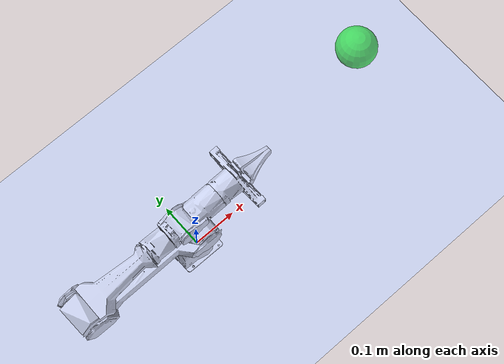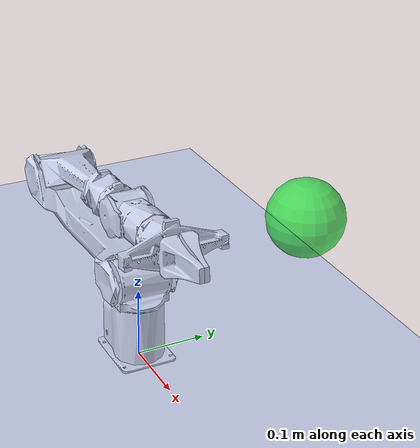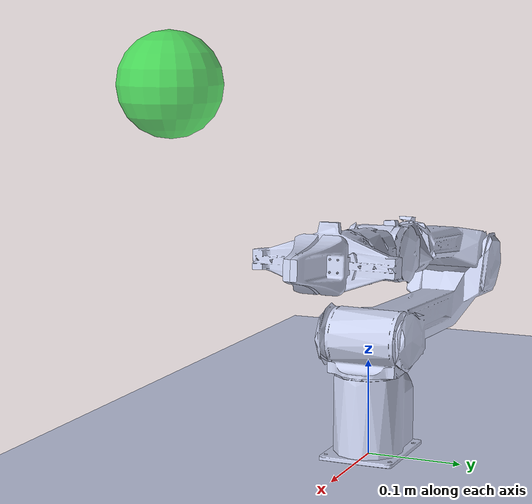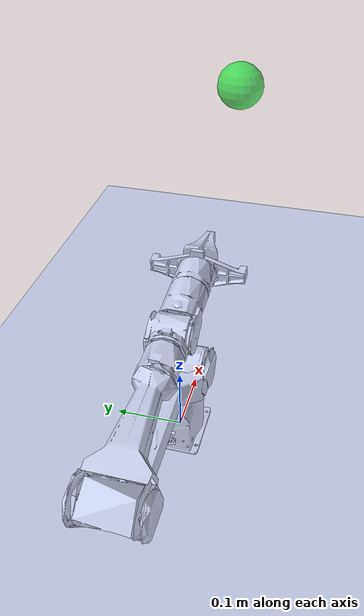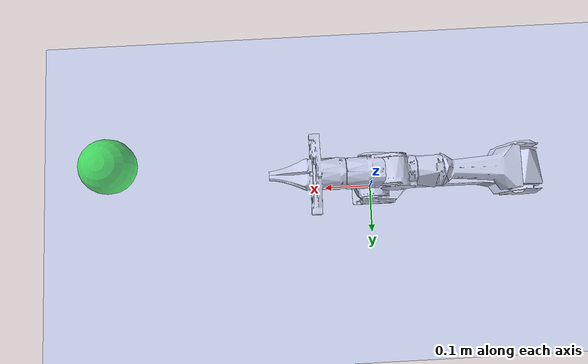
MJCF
<mujoco model="piper">
  <compiler angle="radian" meshdir="../meshes/" eulerseq="XYZ" />

  <option gravity="0 0 -9.81" timestep="0.002" />

  <default>
    <joint damping="10" armature="0.1" />
    <geom rgba="0.79 0.82 0.93 1" />
    <position kp="200" kv="20" />
  </default>

  <asset>
    <mesh name="base_link" file="base_link.STL" />
    <mesh name="link1" file="link1.STL" />
    <mesh name="link2" file="link2.STL" />
    <mesh name="link3" file="link3.STL" />
    <mesh name="link4" file="link4.STL" />
    <mesh name="link5" file="link5.STL" />
    <mesh name="link6" file="link6.STL" />
    <mesh name="gripper_base" file="gripper_base.STL" />
    <mesh name="link7" file="link7.STL" />
    <mesh name="link8" file="link8.STL" />
    <texture type="2d" name="groundplane" builtin="checker" rgb1="0.35 0.35 0.35" rgb2="0.25 0.25 0.25" width="512" height="512" />
    <material name="groundplane" texture="groundplane" texrepeat="5 5" />
  </asset>

  <worldbody>
    <light pos="0 0 3" dir="0 0 -1" diffuse="0.8 0.8 0.8" specular="0.3 0.3 0.3" directional="true" />
    <light pos="1 1 2" dir="-0.5 -0.5 -1" diffuse="0.4 0.4 0.4" specular="0.1 0.1 0.1" />
    <geom type="plane" size="2 2 0.01" material="groundplane" />

    <!-- IK target — drag this green ball with Ctrl + Right-click -->
    <body name="ik_target" mocap="true" pos="0.4 0 0.4">
      <geom type="sphere" size="0.04" rgba="0.1 0.9 0.2 0.7" contype="0" conaffinity="0" />
    </body>

    <body name="base_link" pos="0 0 0" gravcomp="1">
      <inertial pos="-0.00474 0.0000257 0.04145" mass="1.02"
                diaginertia="0.00267 0.00283 0.000896" />
      <geom type="mesh" mesh="base_link" />

      <body name="link1" pos="0 0 0.123" gravcomp="1">
        <inertial pos="0.000122 0.000105 -0.00439" mass="0.71"
                  diaginertia="0.000489 0.000405 0.00044" />
        <joint name="joint1" type="hinge" axis="0 0 1" range="-2.618 2.168" />
        <geom type="mesh" mesh="link1" />

        <!-- URDF rpy="1.5708 -0.1359 -3.1416" using eulerseq=XYZ (extrinsic, matches URDF) -->
        <body name="link2" euler="1.5708 -0.1359 -3.1416" gravcomp="1">
          <inertial pos="0.1987 -0.01093 0.00142" mass="1.17"
                    diaginertia="0.0679 0.0677 0.00117" />
          <joint name="joint2" type="hinge" axis="0 0 1" range="0 3.14" />
          <geom type="mesh" mesh="link2" />

          <body name="link3" pos="0.28503 0 0" euler="0 0 -1.7939" gravcomp="1">
            <inertial pos="-0.02027 -0.13391 -0.000459" mass="0.5"
                      diaginertia="0.01362 0.01380 0.00045" />
            <joint name="joint3" type="hinge" axis="0 0 1" range="-2.967 0" />
            <geom type="mesh" mesh="link3" />

            <body name="link4" pos="-0.021984 -0.25075 0" euler="1.5708 0 0" gravcomp="1">
              <inertial pos="-0.0000967 0.000876 -0.00497" mass="0.38"
                        diaginertia="0.000190 0.000185 0.000155" />
              <joint name="joint4" type="hinge" axis="0 0 1" range="-1.745 1.745" />
              <geom type="mesh" mesh="link4" />

              <body name="link5" euler="-1.5708 0 0" gravcomp="1">
                <inertial pos="-0.0000411 -0.05665 -0.00372" mass="0.383"
                          diaginertia="0.00166 0.00164 0.000185" />
                <joint name="joint5" type="hinge" axis="0 0 1" range="-1.22 1.22" />
                <geom type="mesh" mesh="link5" />

                <body name="link6" pos="0.000088259 -0.091 0" euler="1.5708 0 0" gravcomp="1">
                  <inertial pos="-0.0000883 0.00000906 -0.002" mass="0.007"
                            diaginertia="0.00000107 0.000000573 0.000000573" />
                  <joint name="joint6" type="hinge" axis="0 0 1" range="-2.0944 2.0944" />
                  <geom type="mesh" mesh="link6" rgba="0.90 0.92 0.93 1" />

                  <body name="gripper_base" gravcomp="1">
                    <inertial pos="-0.000184 0.0000805 0.03214" mass="0.45"
                              diaginertia="0.000929 0.000714 0.000394" />
                    <geom type="mesh" mesh="gripper_base" />
                    <!-- End-effector site at fingertip midpoint -->
                    <site name="ee_site" pos="0 0 0.1358" size="0.001" rgba="0 0 0 0" />

                    <body name="link7" pos="0 0 0.1358" euler="1.5708 0 0" gravcomp="1">
                      <inertial pos="0.000651 -0.04919 0.00972" mass="0.025"
                                diaginertia="0.0000747 0.0000737 0.0000747" />
                      <joint name="joint7" type="slide" axis="0 0 1" range="0 0.035" />
                      <geom type="mesh" mesh="link7" />
                    </body>

                    <body name="link8" pos="0 0 0.1358" euler="1.5708 0 -3.1416" gravcomp="1">
                      <inertial pos="0.000651 -0.04919 0.00972" mass="0.025"
                                diaginertia="0.0000747 0.0000737 0.0000747" />
                      <joint name="joint8" type="slide" axis="0 0 -1" range="-0.035 0" />
                      <geom type="mesh" mesh="link8" />
                    </body>
                  </body>
                </body>
              </body>
            </body>
          </body>
        </body>
      </body>
    </body>
  </worldbody>

  <!-- Home: arm upright, elbow bent, gripper open -->
  <keyframe>
    <key name="home" qpos="0 1.57 -1.57 0 0 0 0.015 -0.015"
         ctrl="0 1.57 -1.57 0 0 0 0.015 -0.015" />
    <key name="zero" qpos="0 0 0 0 0 0 0 0"
         ctrl="0 0 0 0 0 0 0 0" />
  </keyframe>

  <actuator>
    <position name="act_joint1" joint="joint1" />
    <position name="act_joint2" joint="joint2" />
    <position name="act_joint3" joint="joint3" />
    <position name="act_joint4" joint="joint4" />
    <position name="act_joint5" joint="joint5" />
    <position name="act_joint6" joint="joint6" />
    <position name="act_joint7" joint="joint7" ctrlrange="0 0.035" />
    <position name="act_joint8" joint="joint8" ctrlrange="-0.035 0" />
  </actuator>
</mujoco>
